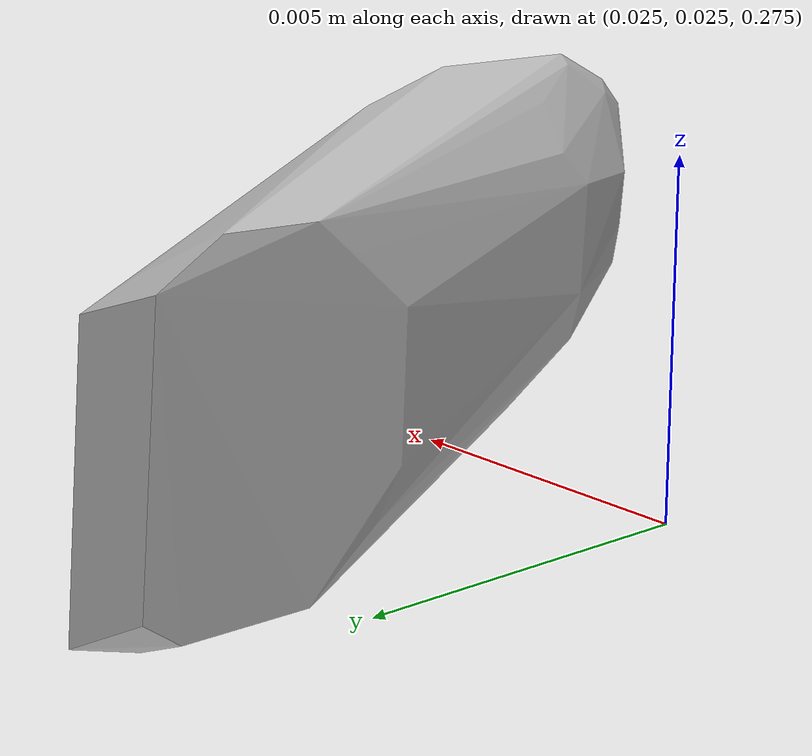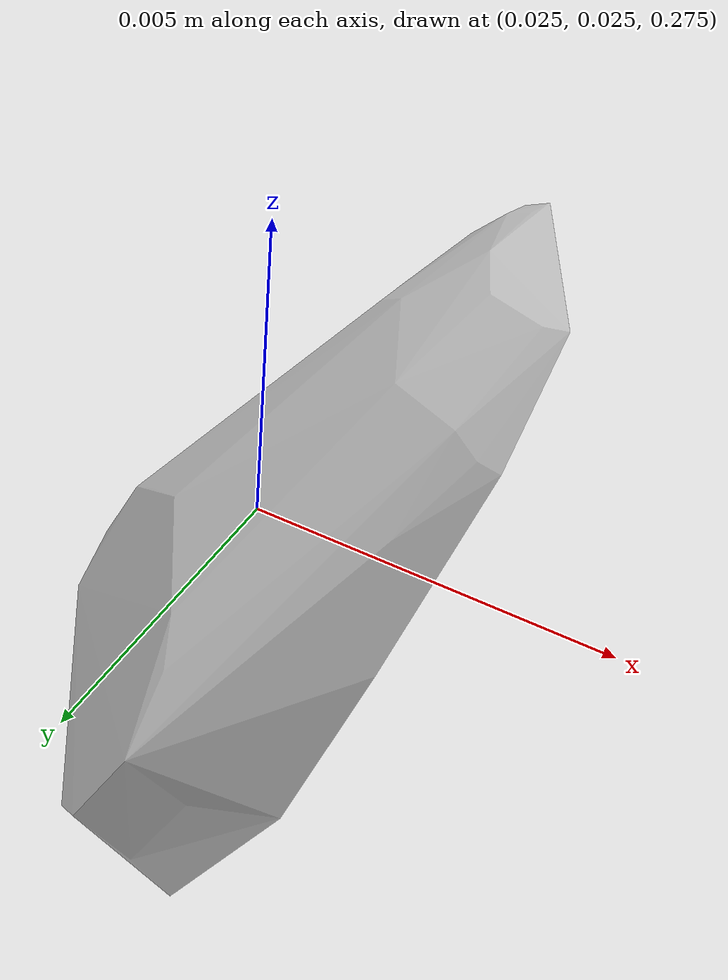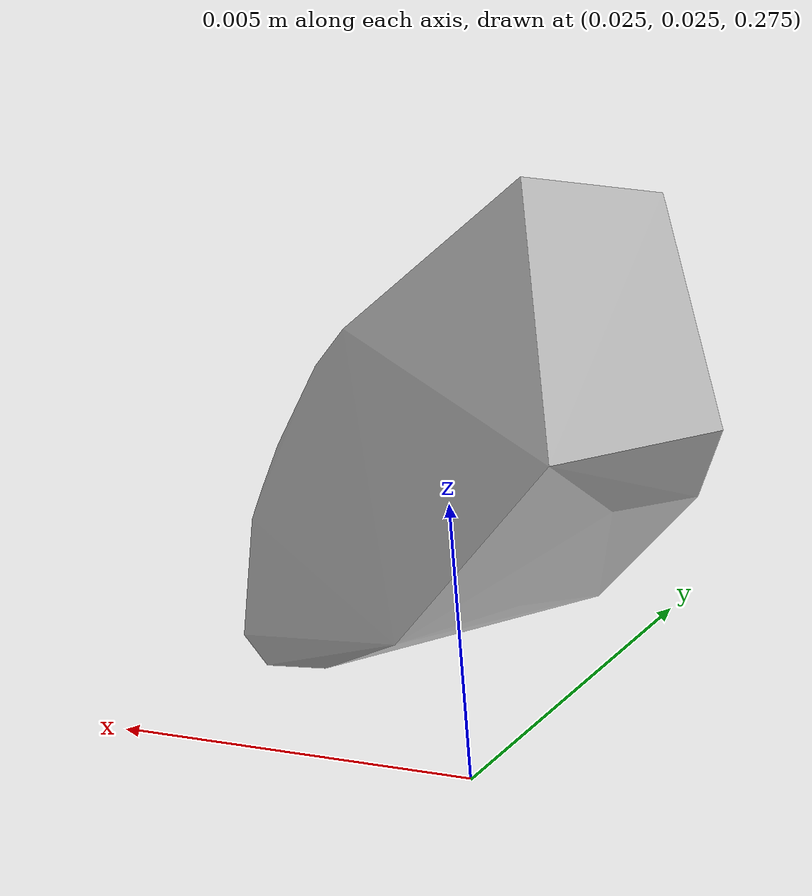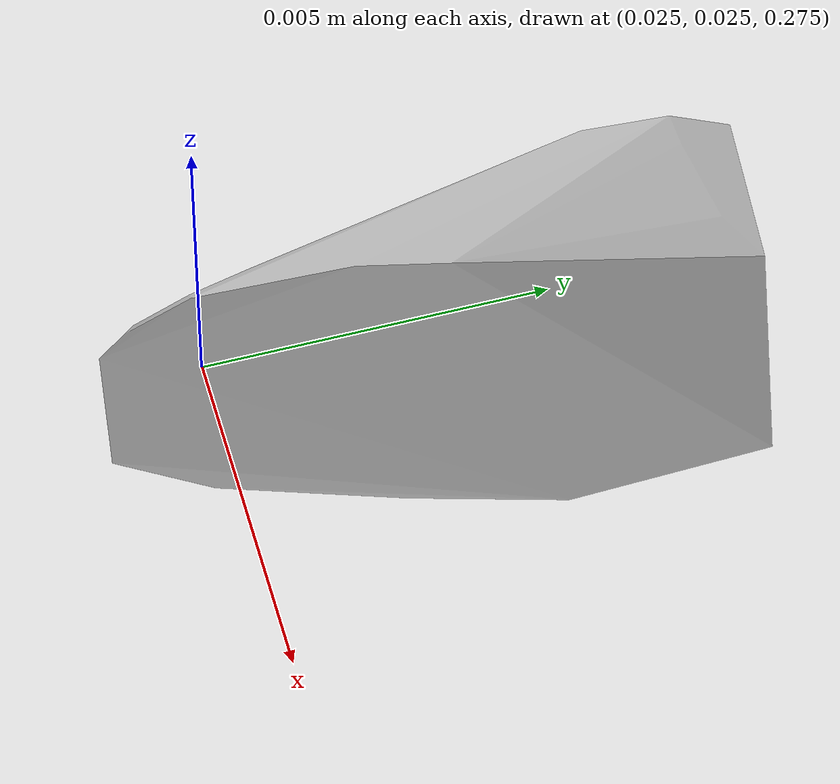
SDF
<?xml version="1.0"?>
<sdf version="1.7">
  <model name="vascular_partexport003">
    <link name="vascular_partexport003_body">
      <visual name="vascular_partexport003_visual">
        <geometry>
          <mesh>
            <uri>vascular_partexport003.obj</uri>
          </mesh>
        </geometry>
      </visual>
      <collision name="vascular_partexport003_collision">
        <geometry>
          <mesh>
            <uri>vascular_partexport003.obj</uri>
          </mesh>
        </geometry>
      </collision>
    </link>
    <frame name="vascular_partexport003_center">
      <pose relative_to="vascular_partexport003_body">0 0 0 0 0 0</pose>
    </frame>
  </model>
</sdf>
